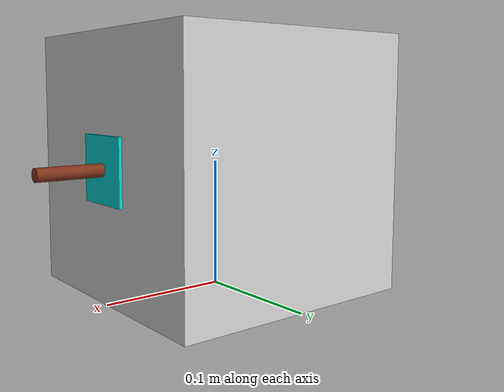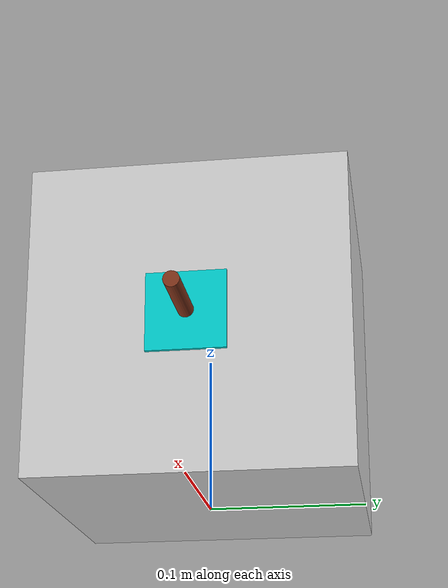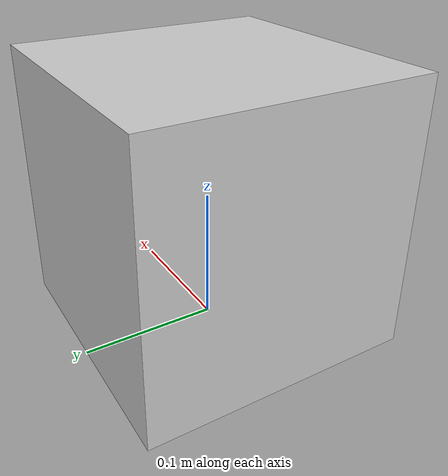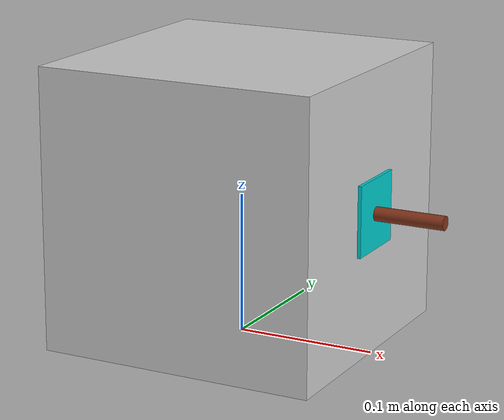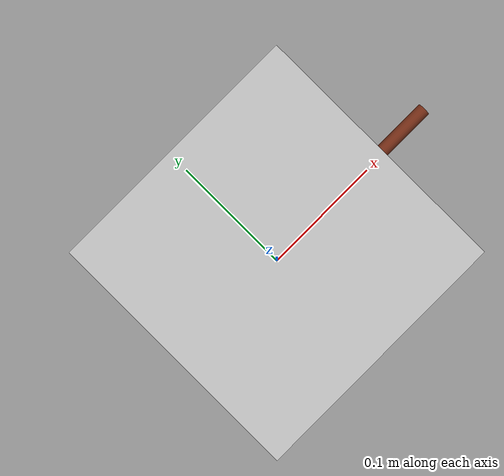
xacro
<?xml version="1.0"?>
<robot name="auv_thruster" xmlns:xacro="http://www.ros.org/wiki/xacro">

    <xacro:include filename="common_properties.xacro" />
    <xacro:include filename="auv_thrust.xacro" />

    <xacro:property name="foundation_side" value="0.2" />

    <link name="base_link"></link>

    <joint name="base_foundation_joint" type="fixed">
        <parent link="base_link" />
        <child link="foundation_link" />
        <origin xyz="0 0 ${foundation_side/2}" />
    </joint>

    <link name="foundation_link">
        <visual>
            <origin xyz="0 0 0" rpy="0 0 0" />
            <geometry>
                <box size="${foundation_side} ${foundation_side} ${foundation_side}" />
            </geometry>
            <material name="grey">
                <color rgba="0.8 0.8 0.8 1" />
            </material>
        </visual>
        <collision>
            <origin xyz="0 0 0" rpy="0 0 0" />
            <geometry>
                <box size="${foundation_side} ${foundation_side} ${foundation_side}" />
            </geometry>
        </collision>
        <xacro:box_inertia
            m="100"
            x="${foundation_side}"
            y="${foundation_side}"
            z="${foundation_side}"
            o_xyz="0 0 0"
            o_rpy="0 0 0"
        />
    </link>

    <joint name="base_rudder_base_joint" type="fixed">
        <parent link="foundation_link" />
        <child link="rudder_base" />
        <origin xyz="${foundation_side/2} 0 0" rpy="0 0 0" />
    </joint>

</robot>

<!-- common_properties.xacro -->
<robot xmlns:xacro="http://www.ros.org/wiki/xacro">

    <material name="grey">
        <color rgba="0.5 0.5 0.5 1" />
    </material>

    <material name="white">
        <color rgba="1 1 1 1" />
    </material>
    <material name="orange">
        <color rgba="1 0.3 0.1 1" />
    </material>
    <material name="blue">
        <color rgba="0.2 0.2 1 1" />
    </material>
    <material name="black">
        <color rgba="0 0 0 1" />
    </material>

    <xacro:macro name="box_inertia" params="m x y z o_xyz o_rpy">
        <inertial>
            <mass value="${m}" />
            <origin xyz="${o_xyz}" rpy="${o_rpy}" />
            <inertia ixx="${(m/12) * (y*y + z*z)}" ixy="0" ixz="0"
                iyy="${(m/12) * (x*x + z*z)}" iyz="0"
                izz="${(m/12) * (x*x + y*y)}" />
        </inertial>
    </xacro:macro>

    <xacro:macro name="sphere_inertia" params="m r o_xyz o_rpy">
        <inertial>
            <mass value="${m}" />
            <origin xyz="${o_xyz}" rpy="${o_rpy}" />
            <inertia ixx="${(2/5) * m * r * r}" ixy="0" ixz="0"
                iyy="${(2/5) * m * r * r}" iyz="0"
                izz="${(2/5) * m * r * r}" />
        </inertial>
    </xacro:macro>

    <xacro:macro name="cylinder_inertia" params="m r l o_xyz o_rpy">
        <inertial>
            <mass value="${m}" />
            <origin xyz="${o_xyz}" rpy="${o_rpy}" />
            <inertia
                ixx="${(m/12)*(3*r*r + l*l)}" ixy="0" ixz="0"
                iyy="${(m/12)*(3*r*r + l*l)}" iyz="0"
                izz="${(m/2)*(r*r)}"
            />
        </inertial>
    </xacro:macro>

</robot>

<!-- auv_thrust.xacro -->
<robot xmlns:xacro="http://www.ros.org/wiki/xacro">

    <xacro:property name="rudder_base_side" value="0.05" />
    <xacro:property name="rudder_base_thickness" value="0.005" />

    <xacro:property name="axis_length" value="0.05" />
    <xacro:property name="axis_radius" value="0.005" />

    <xacro:property name="yaw_limit_rad" value="0.785" />
    <xacro:property name="pitch_limit_rad" value="0.5" />

    <link name="rudder_base">
        <visual>
            <origin xyz="0 0 0" rpy="0 0 0" />
            <geometry>
                <box size="${rudder_base_thickness} ${rudder_base_side} ${rudder_base_side}" />
            </geometry>
            <material name="yellowish1">
                <color rgba="0 0.8 0.8 1" />
            </material>
        </visual>
        <collision>
            <origin xyz="0 0 0" rpy="0 0 0" />
            <geometry>
                <box size="${rudder_base_thickness} ${rudder_base_side} ${rudder_base_side}" />
            </geometry>
        </collision>
        <xacro:box_inertia
            m="0.001"
            x="${rudder_base_thickness}"
            y="${rudder_base_side}"
            z="${rudder_base_side}"
            o_xyz="0 0 0"
            o_rpy="0 0 0"
        />
    </link>

    <link name="rod_link">
        <visual>
            <origin xyz="${axis_length/2} 0 0" rpy="0 ${pi/2} 0" />
            <geometry>
                <cylinder radius="${axis_radius}" length="${axis_length}" />
            </geometry>
            <material name="somecolor2">
                <color rgba="0.5 0.2 0.1 1" />
            </material>
        </visual>
        <collision>
            <origin xyz="${axis_length/2} 0 0" rpy="0 ${pi/2} 0" />
            <geometry>
                <cylinder radius="${axis_radius}" length="${axis_length}" />
            </geometry>
        </collision>
        <xacro:cylinder_inertia
            m="0.001"
            r="${axis_radius}"
            l="${axis_length}"
            o_xyz="${axis_length/2} 0 0"
            o_rpy="0 ${pi/2} 0"
        />
    </link>

    <joint name="yaw_joint" type="revolute">
        <parent link="rudder_base" />
        <child link="rod_intermediate_link" />
        <origin xyz="${rudder_base_thickness/2} 0 0" rpy="0 0 0" />
        <axis xyz="0 0 1" />
        <limit lower="-${yaw_limit_rad}" upper="${yaw_limit_rad}" effort="100" velocity="100" />
    </joint>

    <link name="rod_intermediate_link"></link>

    <joint name="pitch_joint" type="revolute">
        <parent link="rod_intermediate_link" />
        <child link="rod_link" />
        <axis xyz="0 1 0" />
        <limit lower="-${pitch_limit_rad}" upper="${pitch_limit_rad}" effort="100" velocity="100" />
    </joint>

</robot>
